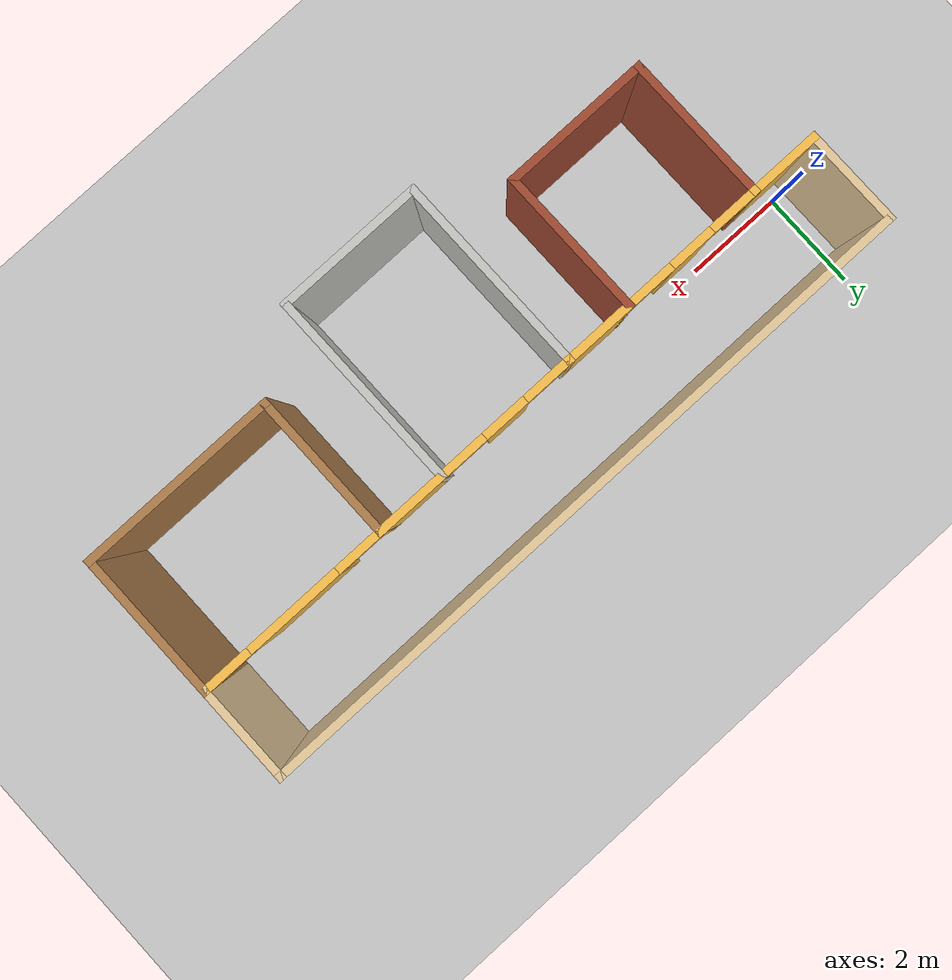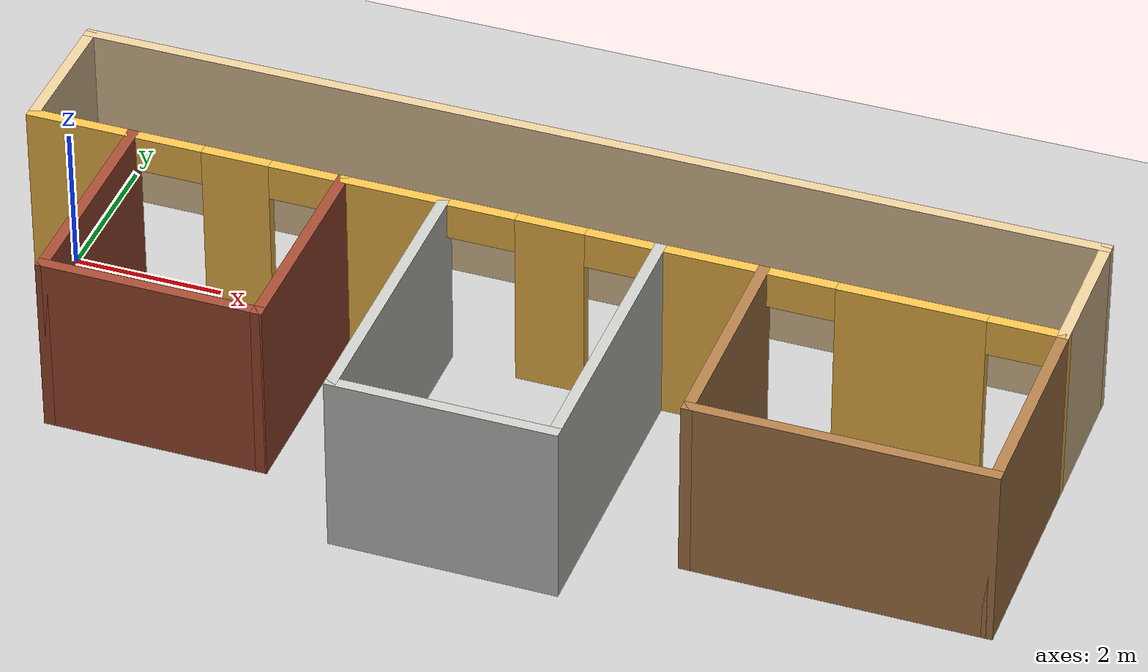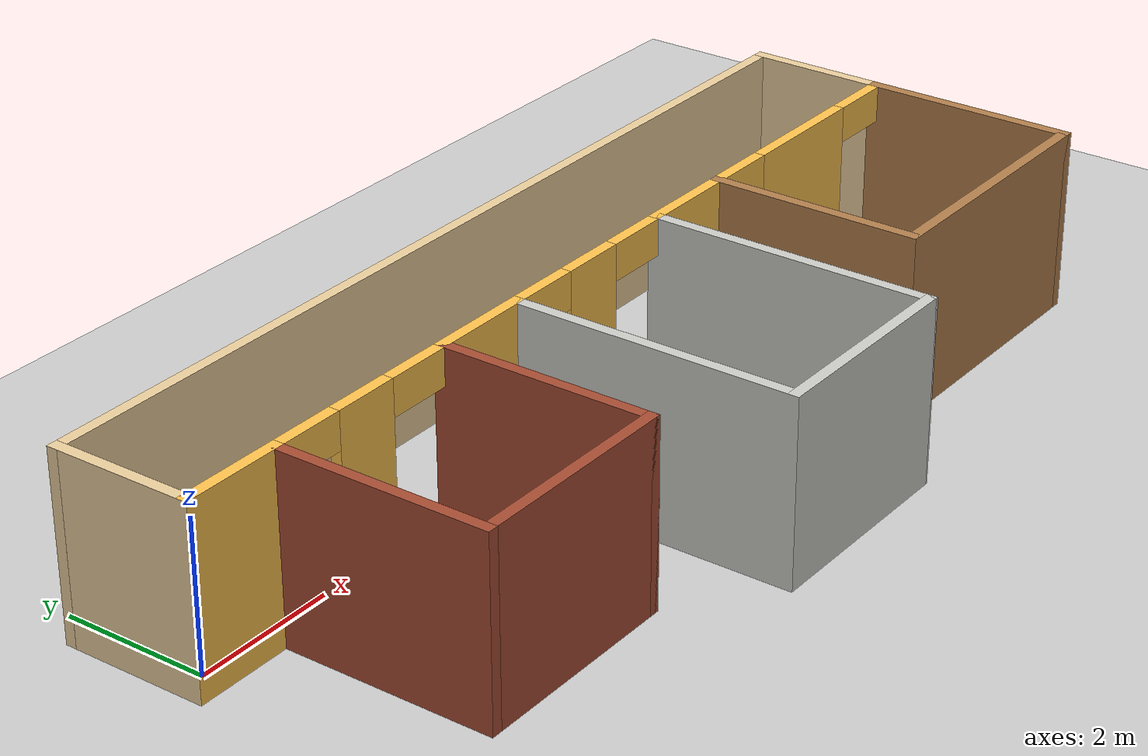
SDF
<sdf version="1.6">
 <world name="default">
  <light name="sun" type="directional">
   <pose>0 0 15 0 -0 0</pose>
   <diffuse>1 1 1 1</diffuse>
   <specular>0.1 0.1 0.1 1</specular>
   <attenuation>
    <range>1000</range>
    <constant>0.9</constant>
    <linear>0.01</linear>
    <quadratic>0.001</quadratic>
   </attenuation>
   <direction>-0.5 0.5 -1</direction>
  </light>
  <model name="ground_plane">
   <static>1</static>
   <link name="link">
    <collision name="collision">
     <geometry><plane><normal>0 0 1</normal><size>100 100</size></plane></geometry>
     <surface><friction><ode><mu>100</mu><mu2>50</mu2></ode></friction></surface>
    </collision>
    <visual name="visual">
     <transparency>1</transparency>
     <cast_shadows>0</cast_shadows>
     <geometry><plane><normal>0 0 1</normal><size>100 100</size></plane></geometry>
     <material>
      <script><uri>file://media/materials/scripts/gazebo.material</uri><name>Gazebo/Grey</name></script>
     </material>
    </visual>
   </link>
  </model>
  <gravity>0 0 -9.8</gravity>
  <magnetic_field>6e-06 2.3e-05 -4.2e-05</magnetic_field>
  <atmosphere type="adiabatic"/>
  <physics name="default_physics" default="0" type="ode">
   <max_step_size>0.001</max_step_size>
   <real_time_factor>1</real_time_factor>
   <real_time_update_rate>1000</real_time_update_rate>
  </physics>
  <scene><ambient>0.4 0.4 0.4 1</ambient><background>0.7 0.7 0.7 1</background><shadows>1</shadows></scene>
  <spherical_coordinates>
   <surface_model>EARTH_WGS84</surface_model>
   <latitude_deg>0</latitude_deg>
   <longitude_deg>0</longitude_deg>
   <elevation>0</elevation>
   <heading_deg>0</heading_deg>
  </spherical_coordinates>
  <model name="SimpleBuilding">
   <pose>6.45453 -1.29625 0 0 -0 0</pose>
   <link name="Wall_0">
    <collision name="Wall_0_Collision">
     <geometry><box><size>1.5 0.15 2.5</size></box></geometry>
     <pose>0 0 1.25 0 -0 0</pose>
    </collision>
    <visual name="Wall_0_Visual">
     <pose>0 0 1.25 0 -0 0</pose>
     <geometry><box><size>1.5 0.15 2.5</size></box></geometry>
     <material>
      <script><uri>file://media/materials/scripts/gazebo.material</uri><name>Gazebo/Grey</name></script>
      <ambient>1 0.764706 0.305882 1</ambient>
     </material>
    </visual>
    <pose>-6.125 1 0 0 -0 0</pose>
   </link>
   <link name="Wall_1">
    <collision name="Wall_1_Collision">
     <geometry><box><size>3 0.15 2.5</size></box></geometry>
     <pose>0 0 1.25 0 -0 0</pose>
    </collision>
    <visual name="Wall_1_Visual">
     <pose>0 0 1.25 0 -0 0</pose>
     <geometry><box><size>3 0.15 2.5</size></box></geometry>
     <material>
      <script><uri>file://media/materials/scripts/gazebo.material</uri><name>Gazebo/Bricks</name></script>
      <ambient>1 1 1 1</ambient>
     </material>
    </visual>
    <pose>-5.45 -0.425 0 0 0 -1.5708</pose>
   </link>
   <link name="Wall_10">
    <collision name="Wall_10_Collision">
     <geometry><box><size>4 0.15 2.5</size></box></geometry>
     <pose>0 0 1.25 0 -0 0</pose>
    </collision>
    <visual name="Wall_10_Visual">
     <pose>0 0 1.25 0 -0 0</pose>
     <geometry><box><size>4 0.15 2.5</size></box></geometry>
     <material>
      <script><uri>file://media/materials/scripts/gazebo.material</uri><name>Gazebo/Wood</name></script>
      <ambient>1 1 1 1</ambient>
     </material>
    </visual>
    <pose>4.875 -1.85 0 0 -0 0</pose>
   </link>
   <link name="Wall_11">
    <collision name="Wall_11_Collision">
     <geometry><box><size>3 0.15 2.5</size></box></geometry>
     <pose>0 0 1.25 0 -0 0</pose>
    </collision>
    <visual name="Wall_11_Visual">
     <pose>0 0 1.25 0 -0 0</pose>
     <geometry><box><size>3 0.15 2.5</size></box></geometry>
     <material>
      <script><uri>file://media/materials/scripts/gazebo.material</uri><name>Gazebo/Wood</name></script>
      <ambient>1 1 1 1</ambient>
     </material>
    </visual>
    <pose>6.8 -0.425 0 0 -0 1.5708</pose>
   </link>
   <link name="Wall_12">
    <collision name="Wall_12_Collision">
     <geometry><box><size>2 0.15 2.5</size></box></geometry>
     <pose>0 0 1.25 0 -0 0</pose>
    </collision>
    <visual name="Wall_12_Visual">
     <pose>0 0 1.25 0 -0 0</pose>
     <geometry><box><size>2 0.15 2.5</size></box></geometry>
     <material>
      <script><uri>file://media/materials/scripts/gazebo.material</uri><name>Gazebo/Grey</name></script>
      <ambient>0.921569 0.807843 0.615686 1</ambient>
     </material>
    </visual>
    <pose>6.8 1.925 0 0 -0 1.5708</pose>
   </link>
   <link name="Wall_13">
    <collision name="Wall_13_Collision">
     <geometry><box><size>13.75 0.15 2.5</size></box></geometry>
     <pose>0 0 1.25 0 -0 0</pose>
    </collision>
    <visual name="Wall_13_Visual">
     <pose>0 0 1.25 0 -0 0</pose>
     <geometry><box><size>13.75 0.15 2.5</size></box></geometry>
     <material>
      <script><uri>file://media/materials/scripts/gazebo.material</uri><name>Gazebo/Grey</name></script>
      <ambient>0.921569 0.807843 0.615686 1</ambient>
     </material>
    </visual>
    <pose>0 2.85 0 0 -0 3.14159</pose>
   </link>
   <link name="Wall_14">
    <collision name="Wall_14_Collision">
     <geometry><box><size>2 0.15 2.5</size></box></geometry>
     <pose>0 0 1.25 0 -0 0</pose>
    </collision>
    <visual name="Wall_14_Visual">
     <pose>0 0 1.25 0 -0 0</pose>
     <geometry><box><size>2 0.15 2.5</size></box></geometry>
     <material>
      <script><uri>file://media/materials/scripts/gazebo.material</uri><name>Gazebo/Grey</name></script>
      <ambient>0.921569 0.807843 0.615686 1</ambient>
     </material>
    </visual>
    <pose>-6.8 1.925 0 0 0 -1.5708</pose>
   </link>
   <link name="Wall_16">
    <pose>-4.025 1 0 0 -0 0</pose>
    <visual name="Wall_16_Visual_0">
     <pose>-1.42806 0 1.25 0 -0 0</pose>
     <geometry><box><size>0.143886 0.15 2.5</size></box></geometry>
     <material>
      <script><uri>file://media/materials/scripts/gazebo.material</uri><name>Gazebo/Grey</name></script>
      <ambient>1 0.764706 0.305882 1</ambient>
     </material>
    </visual>
    <collision name="Wall_16_Collision_0">
     <geometry><box><size>0.143886 0.15 2.5</size></box></geometry>
     <pose>-1.42806 0 1.25 0 -0 0</pose>
    </collision>
    <visual name="Wall_16_Visual_1">
     <pose>-0.001538 0 1.25 0 -0 0</pose>
     <geometry><box><size>0.909151 0.15 2.5</size></box></geometry>
     <material>
      <script><uri>file://media/materials/scripts/gazebo.material</uri><name>Gazebo/Grey</name></script>
      <ambient>1 0.764706 0.305882 1</ambient>
     </material>
    </visual>
    <collision name="Wall_16_Collision_1">
     <geometry><box><size>0.909151 0.15 2.5</size></box></geometry>
     <pose>-0.001538 0 1.25 0 -0 0</pose>
    </collision>
    <visual name="Wall_16_Visual_2">
     <pose>1.42652 0 1.25 0 -0 0</pose>
     <geometry><box><size>0.146963 0.15 2.5</size></box></geometry>
     <material>
      <script><uri>file://media/materials/scripts/gazebo.material</uri><name>Gazebo/Grey</name></script>
      <ambient>1 0.764706 0.305882 1</ambient>
     </material>
    </visual>
    <collision name="Wall_16_Collision_2">
     <geometry><box><size>0.146963 0.15 2.5</size></box></geometry>
     <pose>1.42652 0 1.25 0 -0 0</pose>
    </collision>
    <visual name="Wall_16_Visual_3">
     <pose>-0.906114 0 2.25 0 -0 0</pose>
     <geometry><box><size>0.9 0.15 0.5</size></box></geometry>
     <material>
      <script><uri>file://media/materials/scripts/gazebo.material</uri><name>Gazebo/Grey</name></script>
      <ambient>1 0.764706 0.305882 1</ambient>
     </material>
    </visual>
    <collision name="Wall_16_Collision_3">
     <geometry><box><size>0.9 0.15 0.5</size></box></geometry>
     <pose>-0.906114 0 2.25 0 -0 0</pose>
    </collision>
    <visual name="Wall_16_Visual_4">
     <pose>0.903037 0 2.25 0 -0 0</pose>
     <geometry><box><size>0.9 0.15 0.5</size></box></geometry>
     <material>
      <script><uri>file://media/materials/scripts/gazebo.material</uri><name>Gazebo/Grey</name></script>
      <ambient>1 0.764706 0.305882 1</ambient>
     </material>
    </visual>
    <collision name="Wall_16_Collision_4">
     <geometry><box><size>0.9 0.15 0.5</size></box></geometry>
     <pose>0.903037 0 2.25 0 -0 0</pose>
    </collision>
   </link>
   <link name="Wall_18">
    <pose>0.175 1 0 0 -0 0</pose>
    <visual name="Wall_18_Visual_0">
     <pose>-1.42619 0 1.25 0 -0 0</pose>
     <geometry><box><size>0.147623 0.15 2.5</size></box></geometry>
     <material>
      <script><uri>file://media/materials/scripts/gazebo.material</uri><name>Gazebo/Grey</name></script>
      <ambient>1 0.764706 0.305882 1</ambient>
     </material>
    </visual>
    <collision name="Wall_18_Collision_0">
     <geometry><box><size>0.147623 0.15 2.5</size></box></geometry>
     <pose>-1.42619 0 1.25 0 -0 0</pose>
    </collision>
    <visual name="Wall_18_Visual_1">
     <pose>0.006774 0 1.25 0 -0 0</pose>
     <geometry><box><size>0.918302 0.15 2.5</size></box></geometry>
     <material>
      <script><uri>file://media/materials/scripts/gazebo.material</uri><name>Gazebo/Grey</name></script>
      <ambient>1 0.764706 0.305882 1</ambient>
     </material>
    </visual>
    <collision name="Wall_18_Collision_1">
     <geometry><box><size>0.918302 0.15 2.5</size></box></geometry>
     <pose>0.006774 0 1.25 0 -0 0</pose>
    </collision>
    <visual name="Wall_18_Visual_2">
     <pose>1.43296 0 1.25 0 -0 0</pose>
     <geometry><box><size>0.134075 0.15 2.5</size></box></geometry>
     <material>
      <script><uri>file://media/materials/scripts/gazebo.material</uri><name>Gazebo/Grey</name></script>
      <ambient>1 0.764706 0.305882 1</ambient>
     </material>
    </visual>
    <collision name="Wall_18_Collision_2">
     <geometry><box><size>0.134075 0.15 2.5</size></box></geometry>
     <pose>1.43296 0 1.25 0 -0 0</pose>
    </collision>
    <visual name="Wall_18_Visual_3">
     <pose>-0.902377 0 2.25 0 -0 0</pose>
     <geometry><box><size>0.9 0.15 0.5</size></box></geometry>
     <material>
      <script><uri>file://media/materials/scripts/gazebo.material</uri><name>Gazebo/Grey</name></script>
      <ambient>1 0.764706 0.305882 1</ambient>
     </material>
    </visual>
    <collision name="Wall_18_Collision_3">
     <geometry><box><size>0.9 0.15 0.5</size></box></geometry>
     <pose>-0.902377 0 2.25 0 -0 0</pose>
    </collision>
    <visual name="Wall_18_Visual_4">
     <pose>0.915925 0 2.25 0 -0 0</pose>
     <geometry><box><size>0.9 0.15 0.5</size></box></geometry>
     <material>
      <script><uri>file://media/materials/scripts/gazebo.material</uri><name>Gazebo/Grey</name></script>
      <ambient>1 0.764706 0.305882 1</ambient>
     </material>
    </visual>
    <collision name="Wall_18_Collision_4">
     <geometry><box><size>0.9 0.15 0.5</size></box></geometry>
     <pose>0.915925 0 2.25 0 -0 0</pose>
    </collision>
   </link>
   <link name="Wall_2">
    <collision name="Wall_2_Collision">
     <geometry><box><size>3 0.15 2.5</size></box></geometry>
     <pose>0 0 1.25 0 -0 0</pose>
    </collision>
    <visual name="Wall_2_Visual">
     <pose>0 0 1.25 0 -0 0</pose>
     <geometry><box><size>3 0.15 2.5</size></box></geometry>
     <material>
      <script><uri>file://media/materials/scripts/gazebo.material</uri><name>Gazebo/Bricks</name></script>
      <ambient>1 1 1 1</ambient>
     </material>
    </visual>
    <pose>-4.025 -1.85 0 0 -0 0</pose>
   </link>
   <link name="Wall_20">
    <pose>4.875 1 0 0 -0 0</pose>
    <visual name="Wall_20_Visual_0">
     <pose>-1.93438 0 1.25 0 -0 0</pose>
     <geometry><box><size>0.131246 0.15 2.5</size></box></geometry>
     <material>
      <script><uri>file://media/materials/scripts/gazebo.material</uri><name>Gazebo/Grey</name></script>
      <ambient>1 0.764706 0.305882 1</ambient>
     </material>
    </visual>
    <collision name="Wall_20_Collision_0">
     <geometry><box><size>0.131246 0.15 2.5</size></box></geometry>
     <pose>-1.93438 0 1.25 0 -0 0</pose>
    </collision>
    <visual name="Wall_20_Visual_1">
     <pose>-0.002702 0 1.25 0 -0 0</pose>
     <geometry><box><size>1.9321 0.15 2.5</size></box></geometry>
     <material>
      <script><uri>file://media/materials/scripts/gazebo.material</uri><name>Gazebo/Grey</name></script>
      <ambient>1 0.764706 0.305882 1</ambient>
     </material>
    </visual>
    <collision name="Wall_20_Collision_1">
     <geometry><box><size>1.9321 0.15 2.5</size></box></geometry>
     <pose>-0.002702 0 1.25 0 -0 0</pose>
    </collision>
    <visual name="Wall_20_Visual_2">
     <pose>1.93168 0 1.25 0 -0 0</pose>
     <geometry><box><size>0.13665 0.15 2.5</size></box></geometry>
     <material>
      <script><uri>file://media/materials/scripts/gazebo.material</uri><name>Gazebo/Grey</name></script>
      <ambient>1 0.764706 0.305882 1</ambient>
     </material>
    </visual>
    <collision name="Wall_20_Collision_2">
     <geometry><box><size>0.13665 0.15 2.5</size></box></geometry>
     <pose>1.93168 0 1.25 0 -0 0</pose>
    </collision>
    <visual name="Wall_20_Visual_3">
     <pose>-1.41875 0 2.25 0 -0 0</pose>
     <geometry><box><size>0.9 0.15 0.5</size></box></geometry>
     <material>
      <script><uri>file://media/materials/scripts/gazebo.material</uri><name>Gazebo/Grey</name></script>
      <ambient>1 0.764706 0.305882 1</ambient>
     </material>
    </visual>
    <collision name="Wall_20_Collision_3">
     <geometry><box><size>0.9 0.15 0.5</size></box></geometry>
     <pose>-1.41875 0 2.25 0 -0 0</pose>
    </collision>
    <visual name="Wall_20_Visual_4">
     <pose>1.41335 0 2.25 0 -0 0</pose>
     <geometry><box><size>0.9 0.15 0.5</size></box></geometry>
     <material>
      <script><uri>file://media/materials/scripts/gazebo.material</uri><name>Gazebo/Grey</name></script>
      <ambient>1 0.764706 0.305882 1</ambient>
     </material>
    </visual>
    <collision name="Wall_20_Collision_4">
     <geometry><box><size>0.9 0.15 0.5</size></box></geometry>
     <pose>1.41335 0 2.25 0 -0 0</pose>
    </collision>
   </link>
   <link name="Wall_3">
    <collision name="Wall_3_Collision">
     <geometry><box><size>3 0.15 2.5</size></box></geometry>
     <pose>0 0 1.25 0 -0 0</pose>
    </collision>
    <visual name="Wall_3_Visual">
     <pose>0 0 1.25 0 -0 0</pose>
     <geometry><box><size>3 0.15 2.5</size></box></geometry>
     <material>
      <script><uri>file://media/materials/scripts/gazebo.material</uri><name>Gazebo/Bricks</name></script>
      <ambient>1 1 1 1</ambient>
     </material>
    </visual>
    <pose>-2.6 -0.425 0 0 -0 1.5708</pose>
   </link>
   <link name="Wall_4">
    <collision name="Wall_4_Collision">
     <geometry><box><size>1.5 0.15 2.5</size></box></geometry>
     <pose>0 0 1.25 0 -0 0</pose>
    </collision>
    <visual name="Wall_4_Visual">
     <pose>0 0 1.25 0 -0 0</pose>
     <geometry><box><size>1.5 0.15 2.5</size></box></geometry>
     <material>
      <script><uri>file://media/materials/scripts/gazebo.material</uri><name>Gazebo/Grey</name></script>
      <ambient>1 0.764706 0.305882 1</ambient>
     </material>
    </visual>
    <pose>-1.925 1 0 0 -0 0</pose>
   </link>
   <link name="Wall_5">
    <collision name="Wall_5_Collision">
     <geometry><box><size>4 0.15 2.5</size></box></geometry>
     <pose>0 0 1.25 0 -0 0</pose>
    </collision>
    <visual name="Wall_5_Visual">
     <pose>0 0 1.25 0 -0 0</pose>
     <geometry><box><size>4 0.15 2.5</size></box></geometry>
     <material>
      <script><uri>file://media/materials/scripts/gazebo.material</uri><name>Gazebo/CeilingTiled</name></script>
      <ambient>1 1 1 1</ambient>
     </material>
    </visual>
    <pose>-1.25 -0.925 0 0 0 -1.5708</pose>
   </link>
   <link name="Wall_6">
    <collision name="Wall_6_Collision">
     <geometry><box><size>3 0.15 2.5</size></box></geometry>
     <pose>0 0 1.25 0 -0 0</pose>
    </collision>
    <visual name="Wall_6_Visual">
     <pose>0 0 1.25 0 -0 0</pose>
     <geometry><box><size>3 0.15 2.5</size></box></geometry>
     <material>
      <script><uri>file://media/materials/scripts/gazebo.material</uri><name>Gazebo/CeilingTiled</name></script>
      <ambient>1 1 1 1</ambient>
     </material>
    </visual>
    <pose>0.175 -2.85 0 0 -0 0</pose>
   </link>
   <link name="Wall_7">
    <collision name="Wall_7_Collision">
     <geometry><box><size>4 0.15 2.5</size></box></geometry>
     <pose>0 0 1.25 0 -0 0</pose>
    </collision>
    <visual name="Wall_7_Visual">
     <pose>0 0 1.25 0 -0 0</pose>
     <geometry><box><size>4 0.15 2.5</size></box></geometry>
     <material>
      <script><uri>file://media/materials/scripts/gazebo.material</uri><name>Gazebo/CeilingTiled</name></script>
      <ambient>1 1 1 1</ambient>
     </material>
    </visual>
    <pose>1.6 -0.925 0 0 -0 1.5708</pose>
   </link>
   <link name="Wall_8">
    <collision name="Wall_8_Collision">
     <geometry><box><size>1.5 0.15 2.5</size></box></geometry>
     <pose>0 0 1.25 0 -0 0</pose>
    </collision>
    <visual name="Wall_8_Visual">
     <pose>0 0 1.25 0 -0 0</pose>
     <geometry><box><size>1.5 0.15 2.5</size></box></geometry>
     <material>
      <script><uri>file://media/materials/scripts/gazebo.material</uri><name>Gazebo/Grey</name></script>
      <ambient>1 0.764706 0.305882 1</ambient>
     </material>
    </visual>
    <pose>2.275 1 0 0 -0 0</pose>
   </link>
   <link name="Wall_9">
    <collision name="Wall_9_Collision">
     <geometry><box><size>3 0.15 2.5</size></box></geometry>
     <pose>0 0 1.25 0 -0 0</pose>
    </collision>
    <visual name="Wall_9_Visual">
     <pose>0 0 1.25 0 -0 0</pose>
     <geometry><box><size>3 0.15 2.5</size></box></geometry>
     <material>
      <script><uri>file://media/materials/scripts/gazebo.material</uri><name>Gazebo/Wood</name></script>
      <ambient>1 1 1 1</ambient>
     </material>
    </visual>
    <pose>2.95 -0.425 0 0 0 -1.5708</pose>
   </link>
   <static>1</static>
  </model>
 </world>
</sdf>
